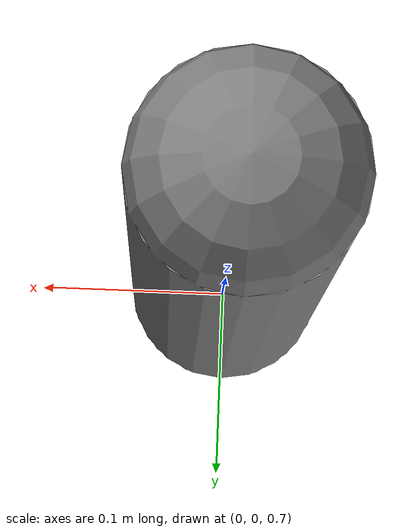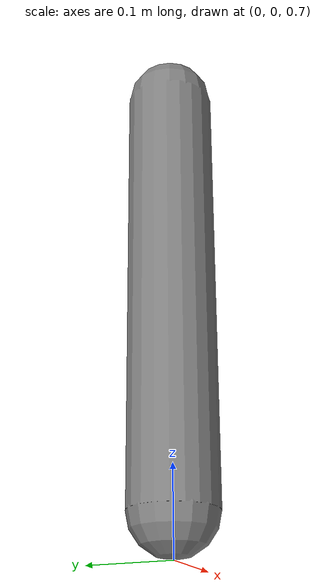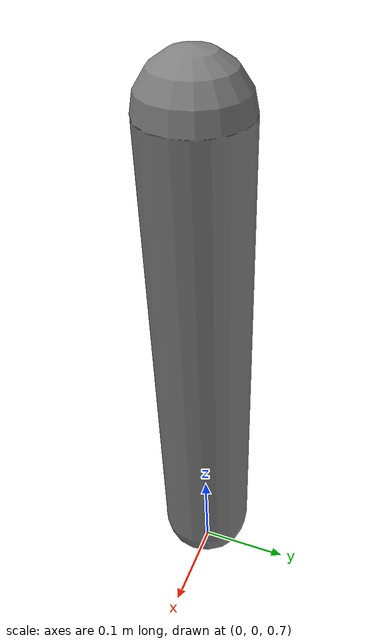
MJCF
<mujoco model="minimal_hinge">
  <option timestep="0.002"/>
  <worldbody>
    <body name="link" pos="0 0 1">
      <joint name="hinge" type="hinge" axis="0 1 0" damping="0.1"/>
      <geom type="capsule" size="0.05 0.25" mass="1"/>
      <site name="imu" pos="0 0 0" quat="1 0 0 0"/>
    </body>
  </worldbody>
  <actuator>
    <motor name="hinge_motor" joint="hinge" gear="1"/>
  </actuator>
  <sensor>
    <gyro name="imu_ang_vel" site="imu"/>
  </sensor>
</mujoco>
